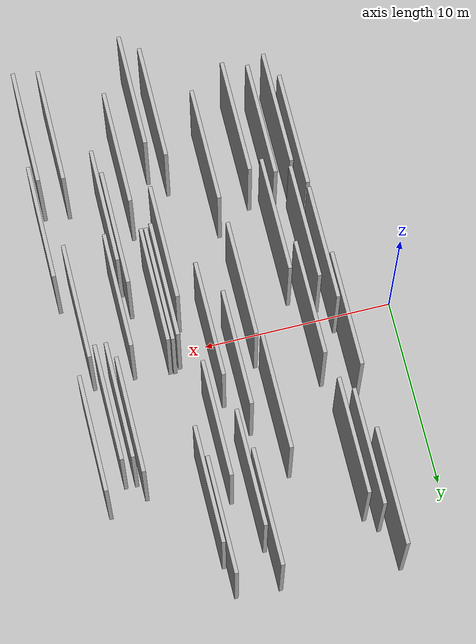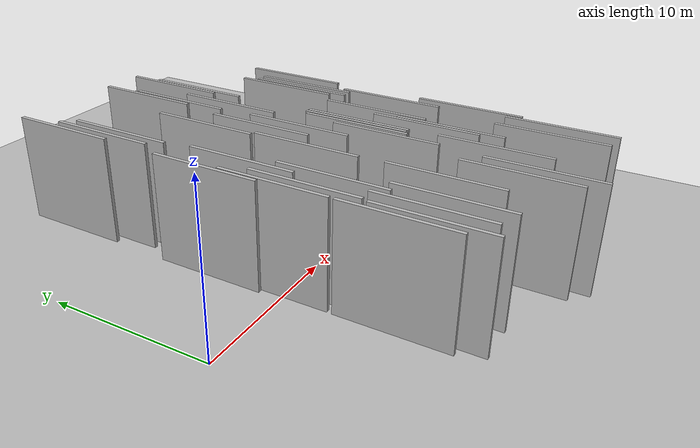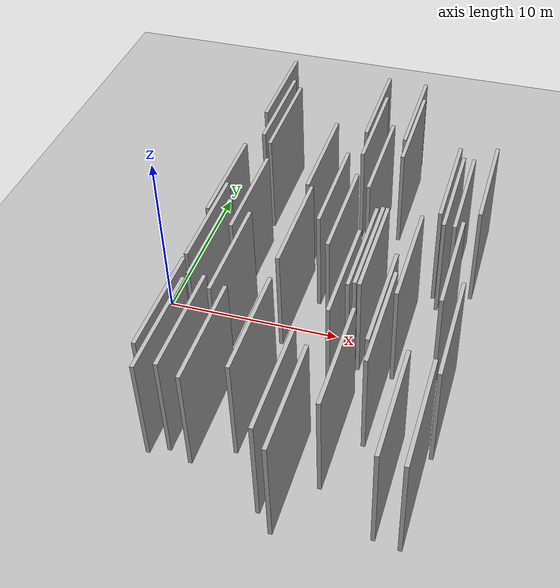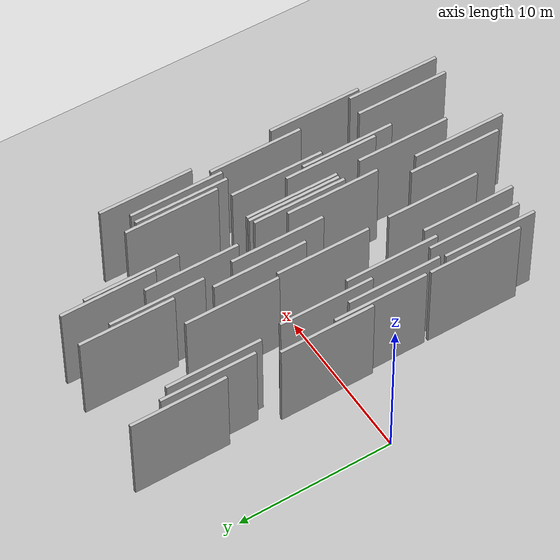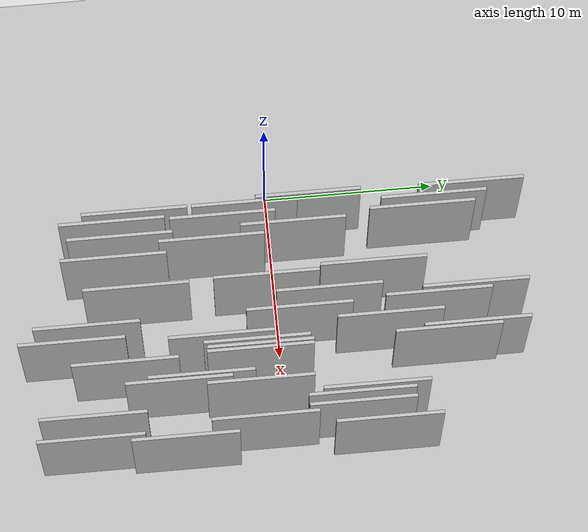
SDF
<?xml version="1.0" encoding="utf-8"?>

<sdf version="1.6">

   <world name="default">

      <gui fullscreen="0">

         <camera name="user_camera">

            <pose>-15 0 4.57585 0 0 0</pose>

            <view_controller>orbit</view_controller>

         </camera>

      </gui>

      <scene>

         <sky>

           <clouds>

             <speed>12</speed>

           </clouds>

         </sky>

         <ambient>0.4 0.4 0.4 1</ambient>

         <background>0.7 0.7 0.7 1</background>

         <shadows>1</shadows>

      </scene>

      <gravity>0 0 -9.8066</gravity>

      <magnetic_field>6e-06 2.3e-05 -4.2e-05</magnetic_field>

      <physics default="0" name="default_physics" type="ode">

         <ode>

            <solver>

               <type>quick</type>

               <iters>10</iters>

               <sor>1.0</sor>

               <use_dynamic_moi_rescaling>0</use_dynamic_moi_rescaling>

            </solver>

            <constraints>

               <cfm>0</cfm>

               <erp>0.2</erp>

               <contact_max_correcting_vel>100</contact_max_correcting_vel>

               <contact_surface_layer>0.001</contact_surface_layer>

            </constraints>

         </ode>

         <max_step_size>0.004</max_step_size>

         <real_time_factor>1</real_time_factor>

         <real_time_update_rate>250</real_time_update_rate>

      </physics>

      <light name="sun" type="directional">

         <cast_shadows>1</cast_shadows>

         <pose>0 0 10 0 0 0</pose>

         <diffuse>0.8 0.8 0.8 1</diffuse>

         <specular>0.2 0.2 0.2 1</specular>

         <attenuation>

            <range>1000</range>

            <constant>0.9</constant>

            <linear>0.01</linear>

            <quadratic>0.001</quadratic>

         </attenuation>

         <direction>-0.5 0.1 -0.9</direction>

      </light>

      <include>

         <name>ground_plane_1</name>

         <uri>model://HANNAS_ground_plane</uri>

         <pose>0 0 0  0 0 0</pose>

      </include>

      <include>

         <name>ground_plane_2</name>

         <uri>model://HANNAS_ground_plane</uri>

         <pose>100 0 0  0 0 0</pose>

      </include>

      <model name="HANNAS_wall_1">

         <static>1</static>

         <pose frame="">11.6903 -1.4165 2.5 0.000000 0.000000 1.570796</pose>

         <link name="link">

            <pose frame="">0 0 3.00 0 0 0</pose>

            <collision name="collision">

               <geometry>

                  <box>

                     <size>6.00 0.2 6.00</size>

                  </box>

               </geometry>

               <max_contacts>10</max_contacts>

               <surface>

                  <contact>

                     <ode/>

                  </contact>

                  <bounce/>

                  <friction>

                     <torsional>

                        <ode/>

                     </torsional>

                     <ode/>

                  </friction>

               </surface>

            </collision>

            <visual name="visual">

               <cast_shadows>0</cast_shadows>

               <geometry>

                  <box>

                     <size>6.00 0.2 6.00</size>

                  </box>

               </geometry>

               <material>

                  <script>

                     <uri>model://HANNAS_wall/materials/scripts</uri>

                     <uri>model://HANNAS_wall/materials/textures</uri>

                     <name>vrc/HANNAS_wall</name>

                  </script>

               </material>

            </visual>

            <self_collide>0</self_collide>

            <enable_wind>0</enable_wind>

            <kinematic>0</kinematic>

         </link>

      </model>

      <model name="HANNAS_wall_2">

         <static>1</static>

         <pose frame="">12.2253 -1.2683 2.5 0.000000 0.000000 1.570796</pose>

         <link name="link">

            <pose frame="">0 0 3.00 0 0 0</pose>

            <collision name="collision">

               <geometry>

                  <box>

                     <size>6.00 0.2 6.00</size>

                  </box>

               </geometry>

               <max_contacts>10</max_contacts>

               <surface>

                  <contact>

                     <ode/>

                  </contact>

                  <bounce/>

                  <friction>

                     <torsional>

                        <ode/>

                     </torsional>

                     <ode/>

                  </friction>

               </surface>

            </collision>

            <visual name="visual">

               <cast_shadows>0</cast_shadows>

               <geometry>

                  <box>

                     <size>6.00 0.2 6.00</size>

                  </box>

               </geometry>

               <material>

                  <script>

                     <uri>model://HANNAS_wall/materials/scripts</uri>

                     <uri>model://HANNAS_wall/materials/textures</uri>

                     <name>vrc/HANNAS_wall</name>

                  </script>

               </material>

            </visual>

            <self_collide>0</self_collide>

            <enable_wind>0</enable_wind>

            <kinematic>0</kinematic>

         </link>

      </model>

      <model name="HANNAS_wall_3">

         <static>1</static>

         <pose frame="">14.9225 4.9758 2.5 0.000000 0.000000 1.570796</pose>

         <link name="link">

            <pose frame="">0 0 3.00 0 0 0</pose>

            <collision name="collision">

               <geometry>

                  <box>

                     <size>6.00 0.2 6.00</size>

                  </box>

               </geometry>

               <max_contacts>10</max_contacts>

               <surface>

                  <contact>

                     <ode/>

                  </contact>

                  <bounce/>

                  <friction>

                     <torsional>

                        <ode/>

                     </torsional>

                     <ode/>

                  </friction>

               </surface>

            </collision>

            <visual name="visual">

               <cast_shadows>0</cast_shadows>

               <geometry>

                  <box>

                     <size>6.00 0.2 6.00</size>

                  </box>

               </geometry>

               <material>

                  <script>

                     <uri>model://HANNAS_wall/materials/scripts</uri>

                     <uri>model://HANNAS_wall/materials/textures</uri>

                     <name>vrc/HANNAS_wall</name>

                  </script>

               </material>

            </visual>

            <self_collide>0</self_collide>

            <enable_wind>0</enable_wind>

            <kinematic>0</kinematic>

         </link>

      </model>

      <model name="HANNAS_wall_4">

         <static>1</static>

         <pose frame="">8.9996 2.8847 2.5 0.000000 0.000000 1.570796</pose>

         <link name="link">

            <pose frame="">0 0 3.00 0 0 0</pose>

            <collision name="collision">

               <geometry>

                  <box>

                     <size>6.00 0.2 6.00</size>

                  </box>

               </geometry>

               <max_contacts>10</max_contacts>

               <surface>

                  <contact>

                     <ode/>

                  </contact>

                  <bounce/>

                  <friction>

                     <torsional>

                        <ode/>

                     </torsional>

                     <ode/>

                  </friction>

               </surface>

            </collision>

            <visual name="visual">

               <cast_shadows>0</cast_shadows>

               <geometry>

                  <box>

                     <size>6.00 0.2 6.00</size>

                  </box>

               </geometry>

               <material>

                  <script>

                     <uri>model://HANNAS_wall/materials/scripts</uri>

                     <uri>model://HANNAS_wall/materials/textures</uri>

                     <name>vrc/HANNAS_wall</name>

                  </script>

               </material>

            </visual>

            <self_collide>0</self_collide>

            <enable_wind>0</enable_wind>

            <kinematic>0</kinematic>

         </link>

      </model>

      <model name="HANNAS_wall_5">

         <static>1</static>

         <pose frame="">11.9767 9.3060 2.5 0.000000 0.000000 1.570796</pose>

         <link name="link">

            <pose frame="">0 0 3.00 0 0 0</pose>

            <collision name="collision">

               <geometry>

                  <box>

                     <size>6.00 0.2 6.00</size>

                  </box>

               </geometry>

               <max_contacts>10</max_contacts>

               <surface>

                  <contact>

                     <ode/>

                  </contact>

                  <bounce/>

                  <friction>

                     <torsional>

                        <ode/>

                     </torsional>

                     <ode/>

                  </friction>

               </surface>

            </collision>

            <visual name="visual">

               <cast_shadows>0</cast_shadows>

               <geometry>

                  <box>

                     <size>6.00 0.2 6.00</size>

                  </box>

               </geometry>

               <material>

                  <script>

                     <uri>model://HANNAS_wall/materials/scripts</uri>

                     <uri>model://HANNAS_wall/materials/textures</uri>

                     <name>vrc/HANNAS_wall</name>

                  </script>

               </material>

            </visual>

            <self_collide>0</self_collide>

            <enable_wind>0</enable_wind>

            <kinematic>0</kinematic>

         </link>

      </model>

      <model name="HANNAS_wall_6">

         <static>1</static>

         <pose frame="">16.9105 5.4805 2.5 0.000000 0.000000 1.570796</pose>

         <link name="link">

            <pose frame="">0 0 3.00 0 0 0</pose>

            <collision name="collision">

               <geometry>

                  <box>

                     <size>6.00 0.2 6.00</size>

                  </box>

               </geometry>

               <max_contacts>10</max_contacts>

               <surface>

                  <contact>

                     <ode/>

                  </contact>

                  <bounce/>

                  <friction>

                     <torsional>

                        <ode/>

                     </torsional>

                     <ode/>

                  </friction>

               </surface>

            </collision>

            <visual name="visual">

               <cast_shadows>0</cast_shadows>

               <geometry>

                  <box>

                     <size>6.00 0.2 6.00</size>

                  </box>

               </geometry>

               <material>

                  <script>

                     <uri>model://HANNAS_wall/materials/scripts</uri>

                     <uri>model://HANNAS_wall/materials/textures</uri>

                     <name>vrc/HANNAS_wall</name>

                  </script>

               </material>

            </visual>

            <self_collide>0</self_collide>

            <enable_wind>0</enable_wind>

            <kinematic>0</kinematic>

         </link>

      </model>

      <model name="HANNAS_wall_7">

         <static>1</static>

         <pose frame="">10.0815 -10.8257 2.5 0.000000 0.000000 1.570796</pose>

         <link name="link">

            <pose frame="">0 0 3.00 0 0 0</pose>

            <collision name="collision">

               <geometry>

                  <box>

                     <size>6.00 0.2 6.00</size>

                  </box>

               </geometry>

               <max_contacts>10</max_contacts>

               <surface>

                  <contact>

                     <ode/>

                  </contact>

                  <bounce/>

                  <friction>

                     <torsional>

                        <ode/>

                     </torsional>

                     <ode/>

                  </friction>

               </surface>

            </collision>

            <visual name="visual">

               <cast_shadows>0</cast_shadows>

               <geometry>

                  <box>

                     <size>6.00 0.2 6.00</size>

                  </box>

               </geometry>

               <material>

                  <script>

                     <uri>model://HANNAS_wall/materials/scripts</uri>

                     <uri>model://HANNAS_wall/materials/textures</uri>

                     <name>vrc/HANNAS_wall</name>

                  </script>

               </material>

            </visual>

            <self_collide>0</self_collide>

            <enable_wind>0</enable_wind>

            <kinematic>0</kinematic>

         </link>

      </model>

      <model name="HANNAS_wall_8">

         <static>1</static>

         <pose frame="">4.5151 8.5991 2.5 0.000000 0.000000 1.570796</pose>

         <link name="link">

            <pose frame="">0 0 3.00 0 0 0</pose>

            <collision name="collision">

               <geometry>

                  <box>

                     <size>6.00 0.2 6.00</size>

                  </box>

               </geometry>

               <max_contacts>10</max_contacts>

               <surface>

                  <contact>

                     <ode/>

                  </contact>

                  <bounce/>

                  <friction>

                     <torsional>

                        <ode/>

                     </torsional>

                     <ode/>

                  </friction>

               </surface>

            </collision>

            <visual name="visual">

               <cast_shadows>0</cast_shadows>

               <geometry>

                  <box>

                     <size>6.00 0.2 6.00</size>

                  </box>

               </geometry>

               <material>

                  <script>

                     <uri>model://HANNAS_wall/materials/scripts</uri>

                     <uri>model://HANNAS_wall/materials/textures</uri>

                     <name>vrc/HANNAS_wall</name>

                  </script>

               </material>

            </visual>

            <self_collide>0</self_collide>

            <enable_wind>0</enable_wind>

            <kinematic>0</kinematic>

         </link>

      </model>

      <model name="HANNAS_wall_9">

         <static>1</static>

         <pose frame="">15.8232 4.1198 2.5 0.000000 0.000000 1.570796</pose>

         <link name="link">

            <pose frame="">0 0 3.00 0 0 0</pose>

            <collision name="collision">

               <geometry>

                  <box>

                     <size>6.00 0.2 6.00</size>

                  </box>

               </geometry>

               <max_contacts>10</max_contacts>

               <surface>

                  <contact>

                     <ode/>

                  </contact>

                  <bounce/>

                  <friction>

                     <torsional>

                        <ode/>

                     </torsional>

                     <ode/>

                  </friction>

               </surface>

            </collision>

            <visual name="visual">

               <cast_shadows>0</cast_shadows>

               <geometry>

                  <box>

                     <size>6.00 0.2 6.00</size>

                  </box>

               </geometry>

               <material>

                  <script>

                     <uri>model://HANNAS_wall/materials/scripts</uri>

                     <uri>model://HANNAS_wall/materials/textures</uri>

                     <name>vrc/HANNAS_wall</name>

                  </script>

               </material>

            </visual>

            <self_collide>0</self_collide>

            <enable_wind>0</enable_wind>

            <kinematic>0</kinematic>

         </link>

      </model>

      <model name="HANNAS_wall_10">

         <static>1</static>

         <pose frame="">9.4727 11.0734 2.5 0.000000 0.000000 1.570796</pose>

         <link name="link">

            <pose frame="">0 0 3.00 0 0 0</pose>

            <collision name="collision">

               <geometry>

                  <box>

                     <size>6.00 0.2 6.00</size>

                  </box>

               </geometry>

               <max_contacts>10</max_contacts>

               <surface>

                  <contact>

                     <ode/>

                  </contact>

                  <bounce/>

                  <friction>

                     <torsional>

                        <ode/>

                     </torsional>

                     <ode/>

                  </friction>

               </surface>

            </collision>

            <visual name="visual">

               <cast_shadows>0</cast_shadows>

               <geometry>

                  <box>

                     <size>6.00 0.2 6.00</size>

                  </box>

               </geometry>

               <material>

                  <script>

                     <uri>model://HANNAS_wall/materials/scripts</uri>

                     <uri>model://HANNAS_wall/materials/textures</uri>

                     <name>vrc/HANNAS_wall</name>

                  </script>

               </material>

            </visual>

            <self_collide>0</self_collide>

            <enable_wind>0</enable_wind>

            <kinematic>0</kinematic>

         </link>

      </model>

      <model name="HANNAS_wall_11">

         <static>1</static>

         <pose frame="">4.1188 -2.7381 2.5 0.000000 0.000000 1.570796</pose>

         <link name="link">

            <pose frame="">0 0 3.00 0 0 0</pose>

            <collision name="collision">

               <geometry>

                  <box>

                     <size>6.00 0.2 6.00</size>

                  </box>

               </geometry>

               <max_contacts>10</max_contacts>

               <surface>

                  <contact>

                     <ode/>

                  </contact>

                  <bounce/>

                  <friction>

                     <torsional>

                        <ode/>

                     </torsional>

                     <ode/>

                  </friction>

               </surface>

            </collision>

            <visual name="visual">

               <cast_shadows>0</cast_shadows>

               <geometry>

                  <box>

                     <size>6.00 0.2 6.00</size>

                  </box>

               </geometry>

               <material>

                  <script>

                     <uri>model://HANNAS_wall/materials/scripts</uri>

                     <uri>model://HANNAS_wall/materials/textures</uri>

                     <name>vrc/HANNAS_wall</name>

                  </script>

               </material>

            </visual>

            <self_collide>0</self_collide>

            <enable_wind>0</enable_wind>

            <kinematic>0</kinematic>

         </link>

      </model>

      <model name="HANNAS_wall_12">

         <static>1</static>

         <pose frame="">3.2301 2.2058 2.5 0.000000 0.000000 1.570796</pose>

         <link name="link">

            <pose frame="">0 0 3.00 0 0 0</pose>

            <collision name="collision">

               <geometry>

                  <box>

                     <size>6.00 0.2 6.00</size>

                  </box>

               </geometry>

               <max_contacts>10</max_contacts>

               <surface>

                  <contact>

                     <ode/>

                  </contact>

                  <bounce/>

                  <friction>

                     <torsional>

                        <ode/>

                     </torsional>

                     <ode/>

                  </friction>

               </surface>

            </collision>

            <visual name="visual">

               <cast_shadows>0</cast_shadows>

               <geometry>

                  <box>

                     <size>6.00 0.2 6.00</size>

                  </box>

               </geometry>

               <material>

                  <script>

                     <uri>model://HANNAS_wall/materials/scripts</uri>

                     <uri>model://HANNAS_wall/materials/textures</uri>

                     <name>vrc/HANNAS_wall</name>

                  </script>

               </material>

            </visual>

            <self_collide>0</self_collide>

            <enable_wind>0</enable_wind>

            <kinematic>0</kinematic>

         </link>

      </model>

      <model name="HANNAS_wall_13">

         <static>1</static>

         <pose frame="">10.9553 -11.7055 2.5 0.000000 0.000000 1.570796</pose>

         <link name="link">

            <pose frame="">0 0 3.00 0 0 0</pose>

            <collision name="collision">

               <geometry>

                  <box>

                     <size>6.00 0.2 6.00</size>

                  </box>

               </geometry>

               <max_contacts>10</max_contacts>

               <surface>

                  <contact>

                     <ode/>

                  </contact>

                  <bounce/>

                  <friction>

                     <torsional>

                        <ode/>

                     </torsional>

                     <ode/>

                  </friction>

               </surface>

            </collision>

            <visual name="visual">

               <cast_shadows>0</cast_shadows>

               <geometry>

                  <box>

                     <size>6.00 0.2 6.00</size>

                  </box>

               </geometry>

               <material>

                  <script>

                     <uri>model://HANNAS_wall/materials/scripts</uri>

                     <uri>model://HANNAS_wall/materials/textures</uri>

                     <name>vrc/HANNAS_wall</name>

                  </script>

               </material>

            </visual>

            <self_collide>0</self_collide>

            <enable_wind>0</enable_wind>

            <kinematic>0</kinematic>

         </link>

      </model>

      <model name="HANNAS_wall_14">

         <static>1</static>

         <pose frame="">11.2573 -3.3548 2.5 0.000000 0.000000 1.570796</pose>

         <link name="link">

            <pose frame="">0 0 3.00 0 0 0</pose>

            <collision name="collision">

               <geometry>

                  <box>

                     <size>6.00 0.2 6.00</size>

                  </box>

               </geometry>

               <max_contacts>10</max_contacts>

               <surface>

                  <contact>

                     <ode/>

                  </contact>

                  <bounce/>

                  <friction>

                     <torsional>

                        <ode/>

                     </torsional>

                     <ode/>

                  </friction>

               </surface>

            </collision>

            <visual name="visual">

               <cast_shadows>0</cast_shadows>

               <geometry>

                  <box>

                     <size>6.00 0.2 6.00</size>

                  </box>

               </geometry>

               <material>

                  <script>

                     <uri>model://HANNAS_wall/materials/scripts</uri>

                     <uri>model://HANNAS_wall/materials/textures</uri>

                     <name>vrc/HANNAS_wall</name>

                  </script>

               </material>

            </visual>

            <self_collide>0</self_collide>

            <enable_wind>0</enable_wind>

            <kinematic>0</kinematic>

         </link>

      </model>

      <model name="HANNAS_wall_15">

         <static>1</static>

         <pose frame="">3.3561 11.4859 2.5 0.000000 0.000000 1.570796</pose>

         <link name="link">

            <pose frame="">0 0 3.00 0 0 0</pose>

            <collision name="collision">

               <geometry>

                  <box>

                     <size>6.00 0.2 6.00</size>

                  </box>

               </geometry>

               <max_contacts>10</max_contacts>

               <surface>

                  <contact>

                     <ode/>

                  </contact>

                  <bounce/>

                  <friction>

                     <torsional>

                        <ode/>

                     </torsional>

                     <ode/>

                  </friction>

               </surface>

            </collision>

            <visual name="visual">

               <cast_shadows>0</cast_shadows>

               <geometry>

                  <box>

                     <size>6.00 0.2 6.00</size>

                  </box>

               </geometry>

               <material>

                  <script>

                     <uri>model://HANNAS_wall/materials/scripts</uri>

                     <uri>model://HANNAS_wall/materials/textures</uri>

                     <name>vrc/HANNAS_wall</name>

                  </script>

               </material>

            </visual>

            <self_collide>0</self_collide>

            <enable_wind>0</enable_wind>

            <kinematic>0</kinematic>

         </link>

      </model>

      <model name="HANNAS_wall_16">

         <static>1</static>

         <pose frame="">4.8507 1.2138 2.5 0.000000 0.000000 1.570796</pose>

         <link name="link">

            <pose frame="">0 0 3.00 0 0 0</pose>

            <collision name="collision">

               <geometry>

                  <box>

                     <size>6.00 0.2 6.00</size>

                  </box>

               </geometry>

               <max_contacts>10</max_contacts>

               <surface>

                  <contact>

                     <ode/>

                  </contact>

                  <bounce/>

                  <friction>

                     <torsional>

                        <ode/>

                     </torsional>

                     <ode/>

                  </friction>

               </surface>

            </collision>

            <visual name="visual">

               <cast_shadows>0</cast_shadows>

               <geometry>

                  <box>

                     <size>6.00 0.2 6.00</size>

                  </box>

               </geometry>

               <material>

                  <script>

                     <uri>model://HANNAS_wall/materials/scripts</uri>

                     <uri>model://HANNAS_wall/materials/textures</uri>

                     <name>vrc/HANNAS_wall</name>

                  </script>

               </material>

            </visual>

            <self_collide>0</self_collide>

            <enable_wind>0</enable_wind>

            <kinematic>0</kinematic>

         </link>

      </model>

      <model name="HANNAS_wall_17">

         <static>1</static>

         <pose frame="">3.4896 -1.4353 2.5 0.000000 0.000000 1.570796</pose>

         <link name="link">

            <pose frame="">0 0 3.00 0 0 0</pose>

            <collision name="collision">

               <geometry>

                  <box>

                     <size>6.00 0.2 6.00</size>

                  </box>

               </geometry>

               <max_contacts>10</max_contacts>

               <surface>

                  <contact>

                     <ode/>

                  </contact>

                  <bounce/>

                  <friction>

                     <torsional>

                        <ode/>

                     </torsional>

                     <ode/>

                  </friction>

               </surface>

            </collision>

            <visual name="visual">

               <cast_shadows>0</cast_shadows>

               <geometry>

                  <box>

                     <size>6.00 0.2 6.00</size>

                  </box>

               </geometry>

               <material>

                  <script>

                     <uri>model://HANNAS_wall/materials/scripts</uri>

                     <uri>model://HANNAS_wall/materials/textures</uri>

                     <name>vrc/HANNAS_wall</name>

                  </script>

               </material>

            </visual>

            <self_collide>0</self_collide>

            <enable_wind>0</enable_wind>

            <kinematic>0</kinematic>

         </link>

      </model>

      <model name="HANNAS_wall_18">

         <static>1</static>

         <pose frame="">16.9978 -5.8208 2.5 0.000000 0.000000 1.570796</pose>

         <link name="link">

            <pose frame="">0 0 3.00 0 0 0</pose>

            <collision name="collision">

               <geometry>

                  <box>

                     <size>6.00 0.2 6.00</size>

                  </box>

               </geometry>

               <max_contacts>10</max_contacts>

               <surface>

                  <contact>

                     <ode/>

                  </contact>

                  <bounce/>

                  <friction>

                     <torsional>

                        <ode/>

                     </torsional>

                     <ode/>

                  </friction>

               </surface>

            </collision>

            <visual name="visual">

               <cast_shadows>0</cast_shadows>

               <geometry>

                  <box>

                     <size>6.00 0.2 6.00</size>

                  </box>

               </geometry>

               <material>

                  <script>

                     <uri>model://HANNAS_wall/materials/scripts</uri>

                     <uri>model://HANNAS_wall/materials/textures</uri>

                     <name>vrc/HANNAS_wall</name>

                  </script>

               </material>

            </visual>

            <self_collide>0</self_collide>

            <enable_wind>0</enable_wind>

            <kinematic>0</kinematic>

         </link>

      </model>

      <model name="HANNAS_wall_19">

         <static>1</static>

         <pose frame="">15.4014 -10.8067 2.5 0.000000 0.000000 1.570796</pose>

         <link name="link">

            <pose frame="">0 0 3.00 0 0 0</pose>

            <collision name="collision">

               <geometry>

                  <box>

                     <size>6.00 0.2 6.00</size>

                  </box>

               </geometry>

               <max_contacts>10</max_contacts>

               <surface>

                  <contact>

                     <ode/>

                  </contact>

                  <bounce/>

                  <friction>

                     <torsional>

                        <ode/>

                     </torsional>

                     <ode/>

                  </friction>

               </surface>

            </collision>

            <visual name="visual">

               <cast_shadows>0</cast_shadows>

               <geometry>

                  <box>

                     <size>6.00 0.2 6.00</size>

                  </box>

               </geometry>

               <material>

                  <script>

                     <uri>model://HANNAS_wall/materials/scripts</uri>

                     <uri>model://HANNAS_wall/materials/textures</uri>

                     <name>vrc/HANNAS_wall</name>

                  </script>

               </material>

            </visual>

            <self_collide>0</self_collide>

            <enable_wind>0</enable_wind>

            <kinematic>0</kinematic>

         </link>

      </model>

      <model name="HANNAS_wall_20">

         <static>1</static>

         <pose frame="">7.6432 5.5093 2.5 0.000000 0.000000 1.570796</pose>

         <link name="link">

            <pose frame="">0 0 3.00 0 0 0</pose>

            <collision name="collision">

               <geometry>

                  <box>

                     <size>6.00 0.2 6.00</size>

                  </box>

               </geometry>

               <max_contacts>10</max_contacts>

               <surface>

                  <contact>

                     <ode/>

                  </contact>

                  <bounce/>

                  <friction>

                     <torsional>

                        <ode/>

                     </torsional>

                     <ode/>

                  </friction>

               </surface>

            </collision>

            <visual name="visual">

               <cast_shadows>0</cast_shadows>

               <geometry>

                  <box>

                     <size>6.00 0.2 6.00</size>

                  </box>

               </geometry>

               <material>

                  <script>

                     <uri>model://HANNAS_wall/materials/scripts</uri>

                     <uri>model://HANNAS_wall/materials/textures</uri>

                     <name>vrc/HANNAS_wall</name>

                  </script>

               </material>

            </visual>

            <self_collide>0</self_collide>

            <enable_wind>0</enable_wind>

            <kinematic>0</kinematic>

         </link>

      </model>

      <model name="HANNAS_wall_21">

         <static>1</static>

         <pose frame="">9.9818 1.1198 2.5 0.000000 0.000000 1.570796</pose>

         <link name="link">

            <pose frame="">0 0 3.00 0 0 0</pose>

            <collision name="collision">

               <geometry>

                  <box>

                     <size>6.00 0.2 6.00</size>

                  </box>

               </geometry>

               <max_contacts>10</max_contacts>

               <surface>

                  <contact>

                     <ode/>

                  </contact>

                  <bounce/>

                  <friction>

                     <torsional>

                        <ode/>

                     </torsional>

                     <ode/>

                  </friction>

               </surface>

            </collision>

            <visual name="visual">

               <cast_shadows>0</cast_shadows>

               <geometry>

                  <box>

                     <size>6.00 0.2 6.00</size>

                  </box>

               </geometry>

               <material>

                  <script>

                     <uri>model://HANNAS_wall/materials/scripts</uri>

                     <uri>model://HANNAS_wall/materials/textures</uri>

                     <name>vrc/HANNAS_wall</name>

                  </script>

               </material>

            </visual>

            <self_collide>0</self_collide>

            <enable_wind>0</enable_wind>

            <kinematic>0</kinematic>

         </link>

      </model>

      <model name="HANNAS_wall_22">

         <static>1</static>

         <pose frame="">6.1450 -9.0485 2.5 0.000000 0.000000 1.570796</pose>

         <link name="link">

            <pose frame="">0 0 3.00 0 0 0</pose>

            <collision name="collision">

               <geometry>

                  <box>

                     <size>6.00 0.2 6.00</size>

                  </box>

               </geometry>

               <max_contacts>10</max_contacts>

               <surface>

                  <contact>

                     <ode/>

                  </contact>

                  <bounce/>

                  <friction>

                     <torsional>

                        <ode/>

                     </torsional>

                     <ode/>

                  </friction>

               </surface>

            </collision>

            <visual name="visual">

               <cast_shadows>0</cast_shadows>

               <geometry>

                  <box>

                     <size>6.00 0.2 6.00</size>

                  </box>

               </geometry>

               <material>

                  <script>

                     <uri>model://HANNAS_wall/materials/scripts</uri>

                     <uri>model://HANNAS_wall/materials/textures</uri>

                     <name>vrc/HANNAS_wall</name>

                  </script>

               </material>

            </visual>

            <self_collide>0</self_collide>

            <enable_wind>0</enable_wind>

            <kinematic>0</kinematic>

         </link>

      </model>

      <model name="HANNAS_wall_23">

         <static>1</static>

         <pose frame="">9.7930 8.9770 2.5 0.000000 0.000000 1.570796</pose>

         <link name="link">

            <pose frame="">0 0 3.00 0 0 0</pose>

            <collision name="collision">

               <geometry>

                  <box>

                     <size>6.00 0.2 6.00</size>

                  </box>

               </geometry>

               <max_contacts>10</max_contacts>

               <surface>

                  <contact>

                     <ode/>

                  </contact>

                  <bounce/>

                  <friction>

                     <torsional>

                        <ode/>

                     </torsional>

                     <ode/>

                  </friction>

               </surface>

            </collision>

            <visual name="visual">

               <cast_shadows>0</cast_shadows>

               <geometry>

                  <box>

                     <size>6.00 0.2 6.00</size>

                  </box>

               </geometry>

               <material>

                  <script>

                     <uri>model://HANNAS_wall/materials/scripts</uri>

                     <uri>model://HANNAS_wall/materials/textures</uri>

                     <name>vrc/HANNAS_wall</name>

                  </script>

               </material>

            </visual>

            <self_collide>0</self_collide>

            <enable_wind>0</enable_wind>

            <kinematic>0</kinematic>

         </link>

      </model>

      <model name="HANNAS_wall_24">

         <static>1</static>

         <pose frame="">11.9800 -1.2423 2.5 0.000000 0.000000 1.570796</pose>

         <link name="link">

            <pose frame="">0 0 3.00 0 0 0</pose>

            <collision name="collision">

               <geometry>

                  <box>

                     <size>6.00 0.2 6.00</size>

                  </box>

               </geometry>

               <max_contacts>10</max_contacts>

               <surface>

                  <contact>

                     <ode/>

                  </contact>

                  <bounce/>

                  <friction>

                     <torsional>

                        <ode/>

                     </torsional>

                     <ode/>

                  </friction>

               </surface>

            </collision>

            <visual name="visual">

               <cast_shadows>0</cast_shadows>

               <geometry>

                  <box>

                     <size>6.00 0.2 6.00</size>

                  </box>

               </geometry>

               <material>

                  <script>

                     <uri>model://HANNAS_wall/materials/scripts</uri>

                     <uri>model://HANNAS_wall/materials/textures</uri>

                     <name>vrc/HANNAS_wall</name>

                  </script>

               </material>

            </visual>

            <self_collide>0</self_collide>

            <enable_wind>0</enable_wind>

            <kinematic>0</kinematic>

         </link>

      </model>

      <model name="HANNAS_wall_25">

         <static>1</static>

         <pose frame="">4.9200 -8.6122 2.5 0.000000 0.000000 1.570796</pose>

         <link name="link">

            <pose frame="">0 0 3.00 0 0 0</pose>

            <collision name="collision">

               <geometry>

                  <box>

                     <size>6.00 0.2 6.00</size>

                  </box>

               </geometry>

               <max_contacts>10</max_contacts>

               <surface>

                  <contact>

                     <ode/>

                  </contact>

                  <bounce/>

                  <friction>

                     <torsional>

                        <ode/>

                     </torsional>

                     <ode/>

                  </friction>

               </surface>

            </collision>

            <visual name="visual">

               <cast_shadows>0</cast_shadows>

               <geometry>

                  <box>

                     <size>6.00 0.2 6.00</size>

                  </box>

               </geometry>

               <material>

                  <script>

                     <uri>model://HANNAS_wall/materials/scripts</uri>

                     <uri>model://HANNAS_wall/materials/textures</uri>

                     <name>vrc/HANNAS_wall</name>

                  </script>

               </material>

            </visual>

            <self_collide>0</self_collide>

            <enable_wind>0</enable_wind>

            <kinematic>0</kinematic>

         </link>

      </model>

      <model name="HANNAS_wall_26">

         <static>1</static>

         <pose frame="">10.8203 6.1597 2.5 0.000000 0.000000 1.570796</pose>

         <link name="link">

            <pose frame="">0 0 3.00 0 0 0</pose>

            <collision name="collision">

               <geometry>

                  <box>

                     <size>6.00 0.2 6.00</size>

                  </box>

               </geometry>

               <max_contacts>10</max_contacts>

               <surface>

                  <contact>

                     <ode/>

                  </contact>

                  <bounce/>

                  <friction>

                     <torsional>

                        <ode/>

                     </torsional>

                     <ode/>

                  </friction>

               </surface>

            </collision>

            <visual name="visual">

               <cast_shadows>0</cast_shadows>

               <geometry>

                  <box>

                     <size>6.00 0.2 6.00</size>

                  </box>

               </geometry>

               <material>

                  <script>

                     <uri>model://HANNAS_wall/materials/scripts</uri>

                     <uri>model://HANNAS_wall/materials/textures</uri>

                     <name>vrc/HANNAS_wall</name>

                  </script>

               </material>

            </visual>

            <self_collide>0</self_collide>

            <enable_wind>0</enable_wind>

            <kinematic>0</kinematic>

         </link>

      </model>

      <model name="HANNAS_wall_27">

         <static>1</static>

         <pose frame="">16.6629 -10.9950 2.5 0.000000 0.000000 1.570796</pose>

         <link name="link">

            <pose frame="">0 0 3.00 0 0 0</pose>

            <collision name="collision">

               <geometry>

                  <box>

                     <size>6.00 0.2 6.00</size>

                  </box>

               </geometry>

               <max_contacts>10</max_contacts>

               <surface>

                  <contact>

                     <ode/>

                  </contact>

                  <bounce/>

                  <friction>

                     <torsional>

                        <ode/>

                     </torsional>

                     <ode/>

                  </friction>

               </surface>

            </collision>

            <visual name="visual">

               <cast_shadows>0</cast_shadows>

               <geometry>

                  <box>

                     <size>6.00 0.2 6.00</size>

                  </box>

               </geometry>

               <material>

                  <script>

                     <uri>model://HANNAS_wall/materials/scripts</uri>

                     <uri>model://HANNAS_wall/materials/textures</uri>

                     <name>vrc/HANNAS_wall</name>

                  </script>

               </material>

            </visual>

            <self_collide>0</self_collide>

            <enable_wind>0</enable_wind>

            <kinematic>0</kinematic>

         </link>

      </model>

      <model name="HANNAS_wall_28">

         <static>1</static>

         <pose frame="">7.9140 -0.5604 2.5 0.000000 0.000000 1.570796</pose>

         <link name="link">

            <pose frame="">0 0 3.00 0 0 0</pose>

            <collision name="collision">

               <geometry>

                  <box>

                     <size>6.00 0.2 6.00</size>

                  </box>

               </geometry>

               <max_contacts>10</max_contacts>

               <surface>

                  <contact>

                     <ode/>

                  </contact>

                  <bounce/>

                  <friction>

                     <torsional>

                        <ode/>

                     </torsional>

                     <ode/>

                  </friction>

               </surface>

            </collision>

            <visual name="visual">

               <cast_shadows>0</cast_shadows>

               <geometry>

                  <box>

                     <size>6.00 0.2 6.00</size>

                  </box>

               </geometry>

               <material>

                  <script>

                     <uri>model://HANNAS_wall/materials/scripts</uri>

                     <uri>model://HANNAS_wall/materials/textures</uri>

                     <name>vrc/HANNAS_wall</name>

                  </script>

               </material>

            </visual>

            <self_collide>0</self_collide>

            <enable_wind>0</enable_wind>

            <kinematic>0</kinematic>

         </link>

      </model>

      <model name="HANNAS_wall_29">

         <static>1</static>

         <pose frame="">5.4491 -3.4583 2.5 0.000000 0.000000 1.570796</pose>

         <link name="link">

            <pose frame="">0 0 3.00 0 0 0</pose>

            <collision name="collision">

               <geometry>

                  <box>

                     <size>6.00 0.2 6.00</size>

                  </box>

               </geometry>

               <max_contacts>10</max_contacts>

               <surface>

                  <contact>

                     <ode/>

                  </contact>

                  <bounce/>

                  <friction>

                     <torsional>

                        <ode/>

                     </torsional>

                     <ode/>

                  </friction>

               </surface>

            </collision>

            <visual name="visual">

               <cast_shadows>0</cast_shadows>

               <geometry>

                  <box>

                     <size>6.00 0.2 6.00</size>

                  </box>

               </geometry>

               <material>

                  <script>

                     <uri>model://HANNAS_wall/materials/scripts</uri>

                     <uri>model://HANNAS_wall/materials/textures</uri>

                     <name>vrc/HANNAS_wall</name>

                  </script>

               </material>

            </visual>

            <self_collide>0</self_collide>

            <enable_wind>0</enable_wind>

            <kinematic>0</kinematic>

         </link>

      </model>

      <model name="HANNAS_wall_30">

         <static>1</static>

         <pose frame="">13.4690 -4.6626 2.5 0.000000 0.000000 1.570796</pose>

         <link name="link">

            <pose frame="">0 0 3.00 0 0 0</pose>

            <collision name="collision">

               <geometry>

                  <box>

                     <size>6.00 0.2 6.00</size>

                  </box>

               </geometry>

               <max_contacts>10</max_contacts>

               <surface>

                  <contact>

                     <ode/>

                  </contact>

                  <bounce/>

                  <friction>

                     <torsional>

                        <ode/>

                     </torsional>

                     <ode/>

                  </friction>

               </surface>

            </collision>

            <visual name="visual">

               <cast_shadows>0</cast_shadows>

               <geometry>

                  <box>

                     <size>6.00 0.2 6.00</size>

                  </box>

               </geometry>

               <material>

                  <script>

                     <uri>model://HANNAS_wall/materials/scripts</uri>

                     <uri>model://HANNAS_wall/materials/textures</uri>

                     <name>vrc/HANNAS_wall</name>

                  </script>

               </material>

            </visual>

            <self_collide>0</self_collide>

            <enable_wind>0</enable_wind>

            <kinematic>0</kinematic>

         </link>

      </model>

      <model name="HANNAS_wall_31">

         <static>1</static>

         <pose frame="">13.7162 -5.9307 2.5 0.000000 0.000000 1.570796</pose>

         <link name="link">

            <pose frame="">0 0 3.00 0 0 0</pose>

            <collision name="collision">

               <geometry>

                  <box>

                     <size>6.00 0.2 6.00</size>

                  </box>

               </geometry>

               <max_contacts>10</max_contacts>

               <surface>

                  <contact>

                     <ode/>

                  </contact>

                  <bounce/>

                  <friction>

                     <torsional>

                        <ode/>

                     </torsional>

                     <ode/>

                  </friction>

               </surface>

            </collision>

            <visual name="visual">

               <cast_shadows>0</cast_shadows>

               <geometry>

                  <box>

                     <size>6.00 0.2 6.00</size>

                  </box>

               </geometry>

               <material>

                  <script>

                     <uri>model://HANNAS_wall/materials/scripts</uri>

                     <uri>model://HANNAS_wall/materials/textures</uri>

                     <name>vrc/HANNAS_wall</name>

                  </script>

               </material>

            </visual>

            <self_collide>0</self_collide>

            <enable_wind>0</enable_wind>

            <kinematic>0</kinematic>

         </link>

      </model>

      <model name="HANNAS_wall_32">

         <static>1</static>

         <pose frame="">12.3942 -8.8341 2.5 0.000000 0.000000 1.570796</pose>

         <link name="link">

            <pose frame="">0 0 3.00 0 0 0</pose>

            <collision name="collision">

               <geometry>

                  <box>

                     <size>6.00 0.2 6.00</size>

                  </box>

               </geometry>

               <max_contacts>10</max_contacts>

               <surface>

                  <contact>

                     <ode/>

                  </contact>

                  <bounce/>

                  <friction>

                     <torsional>

                        <ode/>

                     </torsional>

                     <ode/>

                  </friction>

               </surface>

            </collision>

            <visual name="visual">

               <cast_shadows>0</cast_shadows>

               <geometry>

                  <box>

                     <size>6.00 0.2 6.00</size>

                  </box>

               </geometry>

               <material>

                  <script>

                     <uri>model://HANNAS_wall/materials/scripts</uri>

                     <uri>model://HANNAS_wall/materials/textures</uri>

                     <name>vrc/HANNAS_wall</name>

                  </script>

               </material>

            </visual>

            <self_collide>0</self_collide>

            <enable_wind>0</enable_wind>

            <kinematic>0</kinematic>

         </link>

      </model>

      <model name="HANNAS_wall_33">

         <static>1</static>

         <pose frame="">16.1943 -1.3300 2.5 0.000000 0.000000 1.570796</pose>

         <link name="link">

            <pose frame="">0 0 3.00 0 0 0</pose>

            <collision name="collision">

               <geometry>

                  <box>

                     <size>6.00 0.2 6.00</size>

                  </box>

               </geometry>

               <max_contacts>10</max_contacts>

               <surface>

                  <contact>

                     <ode/>

                  </contact>

                  <bounce/>

                  <friction>

                     <torsional>

                        <ode/>

                     </torsional>

                     <ode/>

                  </friction>

               </surface>

            </collision>

            <visual name="visual">

               <cast_shadows>0</cast_shadows>

               <geometry>

                  <box>

                     <size>6.00 0.2 6.00</size>

                  </box>

               </geometry>

               <material>

                  <script>

                     <uri>model://HANNAS_wall/materials/scripts</uri>

                     <uri>model://HANNAS_wall/materials/textures</uri>

                     <name>vrc/HANNAS_wall</name>

                  </script>

               </material>

            </visual>

            <self_collide>0</self_collide>

            <enable_wind>0</enable_wind>

            <kinematic>0</kinematic>

         </link>

      </model>

      <model name="HANNAS_wall_34">

         <static>1</static>

         <pose frame="">8.0119 -7.9248 2.5 0.000000 0.000000 1.570796</pose>

         <link name="link">

            <pose frame="">0 0 3.00 0 0 0</pose>

            <collision name="collision">

               <geometry>

                  <box>

                     <size>6.00 0.2 6.00</size>

                  </box>

               </geometry>

               <max_contacts>10</max_contacts>

               <surface>

                  <contact>

                     <ode/>

                  </contact>

                  <bounce/>

                  <friction>

                     <torsional>

                        <ode/>

                     </torsional>

                     <ode/>

                  </friction>

               </surface>

            </collision>

            <visual name="visual">

               <cast_shadows>0</cast_shadows>

               <geometry>

                  <box>

                     <size>6.00 0.2 6.00</size>

                  </box>

               </geometry>

               <material>

                  <script>

                     <uri>model://HANNAS_wall/materials/scripts</uri>

                     <uri>model://HANNAS_wall/materials/textures</uri>

                     <name>vrc/HANNAS_wall</name>

                  </script>

               </material>

            </visual>

            <self_collide>0</self_collide>

            <enable_wind>0</enable_wind>

            <kinematic>0</kinematic>

         </link>

      </model>

      <model name="HANNAS_wall_35">

         <static>1</static>

         <pose frame="">3.9270 9.3092 2.5 0.000000 0.000000 1.570796</pose>

         <link name="link">

            <pose frame="">0 0 3.00 0 0 0</pose>

            <collision name="collision">

               <geometry>

                  <box>

                     <size>6.00 0.2 6.00</size>

                  </box>

               </geometry>

               <max_contacts>10</max_contacts>

               <surface>

                  <contact>

                     <ode/>

                  </contact>

                  <bounce/>

                  <friction>

                     <torsional>

                        <ode/>

                     </torsional>

                     <ode/>

                  </friction>

               </surface>

            </collision>

            <visual name="visual">

               <cast_shadows>0</cast_shadows>

               <geometry>

                  <box>

                     <size>6.00 0.2 6.00</size>

                  </box>

               </geometry>

               <material>

                  <script>

                     <uri>model://HANNAS_wall/materials/scripts</uri>

                     <uri>model://HANNAS_wall/materials/textures</uri>

                     <name>vrc/HANNAS_wall</name>

                  </script>

               </material>

            </visual>

            <self_collide>0</self_collide>

            <enable_wind>0</enable_wind>

            <kinematic>0</kinematic>

         </link>

      </model>

      <model name="HANNAS_wall_36">

         <static>1</static>

         <pose frame="">15.2591 4.1340 2.5 0.000000 0.000000 1.570796</pose>

         <link name="link">

            <pose frame="">0 0 3.00 0 0 0</pose>

            <collision name="collision">

               <geometry>

                  <box>

                     <size>6.00 0.2 6.00</size>

                  </box>

               </geometry>

               <max_contacts>10</max_contacts>

               <surface>

                  <contact>

                     <ode/>

                  </contact>

                  <bounce/>

                  <friction>

                     <torsional>

                        <ode/>

                     </torsional>

                     <ode/>

                  </friction>

               </surface>

            </collision>

            <visual name="visual">

               <cast_shadows>0</cast_shadows>

               <geometry>

                  <box>

                     <size>6.00 0.2 6.00</size>

                  </box>

               </geometry>

               <material>

                  <script>

                     <uri>model://HANNAS_wall/materials/scripts</uri>

                     <uri>model://HANNAS_wall/materials/textures</uri>

                     <name>vrc/HANNAS_wall</name>

                  </script>

               </material>

            </visual>

            <self_collide>0</self_collide>

            <enable_wind>0</enable_wind>

            <kinematic>0</kinematic>

         </link>

      </model>

      <model name="HANNAS_wall_37">

         <static>1</static>

         <pose frame="">3.9854 -9.0127 2.5 0.000000 0.000000 1.570796</pose>

         <link name="link">

            <pose frame="">0 0 3.00 0 0 0</pose>

            <collision name="collision">

               <geometry>

                  <box>

                     <size>6.00 0.2 6.00</size>

                  </box>

               </geometry>

               <max_contacts>10</max_contacts>

               <surface>

                  <contact>

                     <ode/>

                  </contact>

                  <bounce/>

                  <friction>

                     <torsional>

                        <ode/>

                     </torsional>

                     <ode/>

                  </friction>

               </surface>

            </collision>

            <visual name="visual">

               <cast_shadows>0</cast_shadows>

               <geometry>

                  <box>

                     <size>6.00 0.2 6.00</size>

                  </box>

               </geometry>

               <material>

                  <script>

                     <uri>model://HANNAS_wall/materials/scripts</uri>

                     <uri>model://HANNAS_wall/materials/textures</uri>

                     <name>vrc/HANNAS_wall</name>

                  </script>

               </material>

            </visual>

            <self_collide>0</self_collide>

            <enable_wind>0</enable_wind>

            <kinematic>0</kinematic>

         </link>

      </model>

      <model name="HANNAS_wall_38">

         <static>1</static>

         <pose frame="">3.4730 -7.6782 2.5 0.000000 0.000000 1.570796</pose>

         <link name="link">

            <pose frame="">0 0 3.00 0 0 0</pose>

            <collision name="collision">

               <geometry>

                  <box>

                     <size>6.00 0.2 6.00</size>

                  </box>

               </geometry>

               <max_contacts>10</max_contacts>

               <surface>

                  <contact>

                     <ode/>

                  </contact>

                  <bounce/>

                  <friction>

                     <torsional>

                        <ode/>

                     </torsional>

                     <ode/>

                  </friction>

               </surface>

            </collision>

            <visual name="visual">

               <cast_shadows>0</cast_shadows>

               <geometry>

                  <box>

                     <size>6.00 0.2 6.00</size>

                  </box>

               </geometry>

               <material>

                  <script>

                     <uri>model://HANNAS_wall/materials/scripts</uri>

                     <uri>model://HANNAS_wall/materials/textures</uri>

                     <name>vrc/HANNAS_wall</name>

                  </script>

               </material>

            </visual>

            <self_collide>0</self_collide>

            <enable_wind>0</enable_wind>

            <kinematic>0</kinematic>

         </link>

      </model>

      <model name="HANNAS_wall_39">

         <static>1</static>

         <pose frame="">14.0693 -1.4155 2.5 0.000000 0.000000 1.570796</pose>

         <link name="link">

            <pose frame="">0 0 3.00 0 0 0</pose>

            <collision name="collision">

               <geometry>

                  <box>

                     <size>6.00 0.2 6.00</size>

                  </box>

               </geometry>

               <max_contacts>10</max_contacts>

               <surface>

                  <contact>

                     <ode/>

                  </contact>

                  <bounce/>

                  <friction>

                     <torsional>

                        <ode/>

                     </torsional>

                     <ode/>

                  </friction>

               </surface>

            </collision>

            <visual name="visual">

               <cast_shadows>0</cast_shadows>

               <geometry>

                  <box>

                     <size>6.00 0.2 6.00</size>

                  </box>

               </geometry>

               <material>

                  <script>

                     <uri>model://HANNAS_wall/materials/scripts</uri>

                     <uri>model://HANNAS_wall/materials/textures</uri>

                     <name>vrc/HANNAS_wall</name>

                  </script>

               </material>

            </visual>

            <self_collide>0</self_collide>

            <enable_wind>0</enable_wind>

            <kinematic>0</kinematic>

         </link>

      </model>

      <model name="HANNAS_wall_40">

         <static>1</static>

         <pose frame="">11.7365 10.9322 2.5 0.000000 0.000000 1.570796</pose>

         <link name="link">

            <pose frame="">0 0 3.00 0 0 0</pose>

            <collision name="collision">

               <geometry>

                  <box>

                     <size>6.00 0.2 6.00</size>

                  </box>

               </geometry>

               <max_contacts>10</max_contacts>

               <surface>

                  <contact>

                     <ode/>

                  </contact>

                  <bounce/>

                  <friction>

                     <torsional>

                        <ode/>

                     </torsional>

                     <ode/>

                  </friction>

               </surface>

            </collision>

            <visual name="visual">

               <cast_shadows>0</cast_shadows>

               <geometry>

                  <box>

                     <size>6.00 0.2 6.00</size>

                  </box>

               </geometry>

               <material>

                  <script>

                     <uri>model://HANNAS_wall/materials/scripts</uri>

                     <uri>model://HANNAS_wall/materials/textures</uri>

                     <name>vrc/HANNAS_wall</name>

                  </script>

               </material>

            </visual>

            <self_collide>0</self_collide>

            <enable_wind>0</enable_wind>

            <kinematic>0</kinematic>

         </link>

      </model>

   </world>

</sdf>
